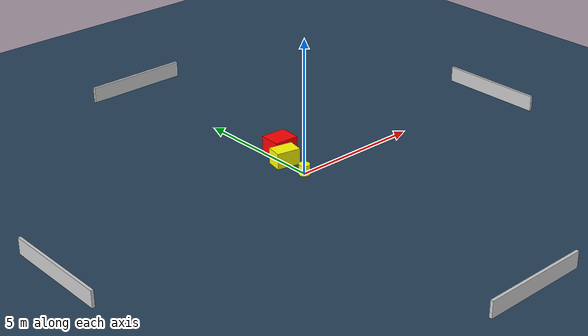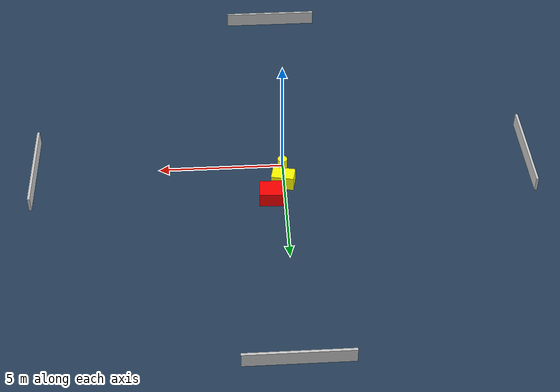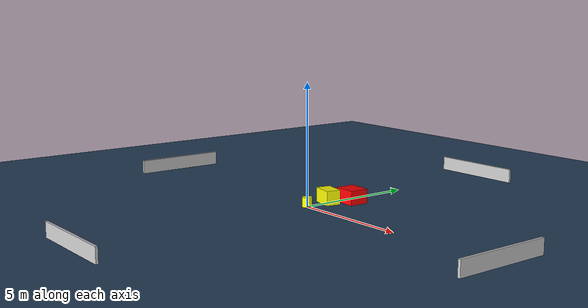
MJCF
<?xml version="1.0" ?>
<mujoco model="generated_environment">
  <option timestep="0.01" integrator="RK4" cone="elliptic"/>
  <default>
    <geom density="1"/>
  </default>
  <asset>
    <texture builtin="gradient" height="3072" name="skybox" rgb1="0.3 0.5 0.7" rgb2="0 0 0" type="skybox" width="512"/>
    <texture builtin="checker" height="300" name="groundplane" rgb1="0.2 0.3 0.4" rgb2="0.1 0.2 0.3" type="2d" width="300"/>
    <material name="groundplane" reflectance="0.2" texrepeat="5 5" texture="groundplane"/>
  </asset>
  <worldbody>
    <light dir="0 0 -1" directional="true" pos="0 0 1.5"/>
    <geom condim="3" friction="0.5 0.005 0.001" material="groundplane" name="floor" pos="0 0 0" size="0 0 0.05" type="plane"/>
    <body name="walls">
      <geom name="wall_1" condim="4" pos="-10.0 0.0 0.3" rgba="0.800000011920929 0.800000011920929 0.800000011920929 1.0" size="0.05 2.0 0.3" type="box"/>
      <geom name="wall_2" condim="4" pos="10.0 0.0 0.3" rgba="0.800000011920929 0.800000011920929 0.800000011920929 1.0" size="0.05 2.0 0.3" type="box"/>
      <geom name="wall_3" condim="4" pos="0.0 -10.0 0.3" rgba="0.800000011920929 0.800000011920929 0.800000011920929 1.0" size="2.0 0.05 0.3" type="box"/>
      <geom name="wall_4" condim="4" pos="0.0 10.0 0.3" rgba="0.800000011920929 0.800000011920929 0.800000011920929 1.0" size="2.0 0.05 0.3" type="box"/>
    </body>
    <body name="robot">
      <joint name="joint_x" type="slide" pos="0 0 0" axis="1 0 0"/>
      <joint name="joint_y" type="slide" pos="0 0 0" axis="0 1 0"/>
      <geom name="robot" type="cylinder" pos="0.0 0.0 0.2" size="0.2 0.2 0.0" mass="5.0" friction="1.0 0.005 0.0001" condim="4" rgba="1.0 1.0 0.0 1.0"/>
    </body>
    <body name="obstacle_1_movable">
      <geom name="obstacle_1_movable" condim="4" pos="0.02923777840443848 1.0677287929246293 0.3" euler="0 0 168.6230419808412" friction="0.0 0.005 0.001" rgba="1.0 1.0 0.0 1.0" size="0.44969901140641155 0.3029508838190281 0.3" type="box" mass="0.1"/>
      <joint type="free"/>
    </body>
    <body name="obstacle_2_static">
      <geom name="obstacle_2_static" condim="4" pos="0.5334147068212877 1.8986048167104266 0.3" euler="0 0 177.2058029072182" friction="0.0 0.005 0.001" rgba="1.0 0.0 0.0 1.0" size="0.48082951608851027 0.4033218098553532 0.3" type="box"/>
    </body>
  </worldbody>
  <actuator>
    <motor name="actuator_x" joint="joint_x" gear="1" ctrlrange="-1 1"/>
    <motor name="actuator_y" joint="joint_y" gear="1" ctrlrange="-1 1"/>
  </actuator>
</mujoco>
